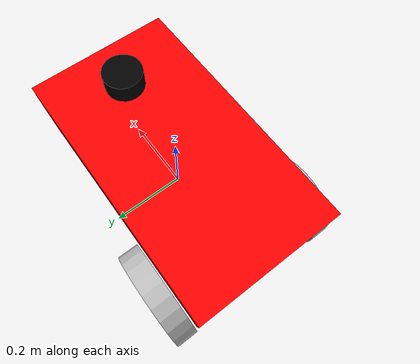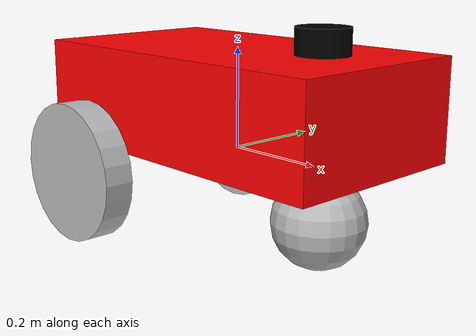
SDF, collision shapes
<?xml version="1.0" ?>
<sdf version="1.5">
  <model name="two_wheeled_robot">
  <static>false</static>

  <!-- ****************** ROBOT BASE FOOTPRINT ***************************  -->
  <pose>0.0 0.0 0.0 0.0 0.0 0.0</pose>
  <link name="base_footprint"/>

  <!-- ********************** ROBOT BASE *********************************  -->
  <link name="base_link">

    <collision name="base_collision">
      <pose>0 0 0.1 0 0 0</pose>
      <geometry>
        <box>
          <size>0.70 0.39 0.20</size>
        </box>
      </geometry>
    </collision>

    <visual name="base_visual">
      <pose>0 0 -0.05 1.5707963267949 0 3.141592654</pose>
      <geometry>
        <mesh>
          <uri>model://two_wheeled_robot_description/meshes/robot_base.stl</uri>
          <scale>1.0 1.0 1.0</scale>
        </mesh>
      </geometry>
      <material>
        <ambient>1.0 0.0 0.0 1.0</ambient>
        <diffuse>1.0 0.0 0.0 1.0</diffuse>
        <specular>0.0 0.0 0.0 1.0</specular>
        <emissive>0.0 0.0 0.0 1.0</emissive>
      </material>
    </visual>
  </link>

  <!-- *********************** IMU SENSOR SETUP **************************  -->
  <link name="imu_link">
    <gravity>true</gravity>
    <sensor name="twr_imu" type="imu">
      <always_on>true</always_on>
      <update_rate>100</update_rate>
      <visualize>true</visualize>
      <imu>
        <orientation>
          <x>
            <noise type="gaussian">
              <mean>0.0</mean>
              <stddev>2e-3</stddev>
            </noise>
          </x>
          <y>
            <noise type="gaussian">
              <mean>0.0</mean>
              <stddev>2e-3</stddev>
            </noise>
          </y>
          <z>
            <noise type="gaussian">
              <mean>0.0</mean>
              <stddev>2e-3</stddev>
            </noise>
          </z>
        </orientation>
        <angular_velocity>
          <x>
            <noise type="gaussian">
              <mean>0.0</mean>
              <stddev>2e-4</stddev>
            </noise>
          </x>
          <y>
            <noise type="gaussian">
              <mean>0.0</mean>
              <stddev>2e-4</stddev>
            </noise>
          </y>
          <z>
            <noise type="gaussian">
              <mean>0.0</mean>
              <stddev>2e-4</stddev>
            </noise>
          </z>
        </angular_velocity>
        <linear_acceleration>
          <x>
            <noise type="gaussian">
              <mean>0.0</mean>
              <stddev>1.7e-2</stddev>
            </noise>
          </x>
          <y>
            <noise type="gaussian">
              <mean>0.0</mean>
              <stddev>1.7e-2</stddev>
            </noise>
          </y>
          <z>
            <noise type="gaussian">
              <mean>0.0</mean>
              <stddev>1.7e-2</stddev>
            </noise>
          </z>
        </linear_acceleration>
      </imu>
      <plugin name="two_wheeled_robot_imu" filename="libgazebo_ros_imu_sensor.so">
        <initial_orientation_as_reference>false</initial_orientation_as_reference>
        <frame_name>imu_link</frame_name>
        <ros>
          <namespace>/imu</namespace>
          <remapping>~/out:=data</remapping>
        </ros>
      </plugin>
    </sensor>
  </link>

  <!-- ****************************** LIDAR *****************************    -->
  <link name="lidar_link">
    <inertial>
      <pose>0.215 0 0.13 0 0 0</pose>
      <inertia>
        <ixx>0.001</ixx>
        <ixy>0.000</ixy>
        <ixz>0.000</ixz>
        <iyy>0.001</iyy>
        <iyz>0.000</iyz>
        <izz>0.001</izz>
      </inertia>
      <mass>0.114</mass>
    </inertial>

    <collision name="lidar_collision">
      <pose>0.215 0 0.13 0 0 0</pose>
      <geometry>
        <cylinder>
          <radius>0.0508</radius>
          <length>0.1</length>
        </cylinder>
      </geometry>
    </collision>

    <visual name="lidar_visual">
      <pose>0.215 0 0.13 0 0 0</pose>
      <geometry>
        <cylinder>
          <radius>0.0508</radius>
          <length>0.1</length>
        </cylinder>
      </geometry>
      <material>
        <ambient>0.0 0.0 0.0 1.0</ambient>
        <diffuse>0.0 0.0 0.0 1.0</diffuse>
        <specular>0.0 0.0 0.0 1.0</specular>
        <emissive>0.0 0.0 0.0 1.0</emissive>
      </material>
    </visual>

    <sensor name="lidar" type="ray">
      <pose>0.215 0 0.1 0 0 0</pose>
      <always_on>true</always_on>
      <visualize>true</visualize>
      <update_rate>5</update_rate>
      <ray>
        <scan>
          <horizontal>
            <samples>120</samples>
            <resolution>1.000000</resolution>
            <min_angle>-3.14159</min_angle>
            <max_angle>3.14159</max_angle>
          </horizontal>
        </scan>
        <range>
          <min>0.3</min>
          <max>15.0</max>
          <resolution>0.015</resolution>
        </range>
        <noise>
          <type>gaussian</type>
          <mean>0.0</mean>
          <stddev>0.01</stddev>
        </noise>
      </ray>
      <plugin name="scan" filename="libgazebo_ros_ray_sensor.so">
        <ros>
          <remapping>~/out:=scan</remapping>
        </ros>
        <output_type>sensor_msgs/LaserScan</output_type>
        <frame_name>lidar_link</frame_name>
      </plugin>
    </sensor>
  </link>

  <!-- ****************************** camera *****************************    -->
  <link name="camera_link">
    <inertial>
      <pose>0.215 0 0.23 0 0 0</pose>
      <inertia>
        <ixx>0.001</ixx>
        <ixy>0.000</ixy>
        <ixz>0.000</ixz>
        <iyy>0.001</iyy>
        <iyz>0.000</iyz>
        <izz>0.001</izz>
      </inertia>
      <mass>0.114</mass>
    </inertial>

    <collision name="camera_collision">
      <pose>0.215 0 0.23 0 0 0</pose>
      <geometry>
        <cylinder>
          <radius>0.0508</radius>
          <length>0.05</length>
        </cylinder>
      </geometry>
    </collision>

    <visual name="camera_visual">
      <pose>0.215 0 0.23 0 0 0</pose>
      <geometry>
        <cylinder>
          <radius>0.0508</radius>
          <length>0.05</length>
        </cylinder>
      </geometry>
      <material>
        <ambient>0.0 0.0 0.0 1.0</ambient>
        <diffuse>0.0 0.0 0.0 1.0</diffuse>
        <specular>0.0 0.0 0.0 1.0</specular>
        <emissive>0.0 0.0 0.0 1.0</emissive>
      </material>
    </visual>

    <sensor name="camera" type="camera">
      <pose>0.215 0 0.2325 0 0 0</pose>
      <always_on>true</always_on>
      <visualize>true</visualize>
      <update_rate>30</update_rate>
      <camera>
        <horizontal_fov>1.3962634</horizontal_fov>
        <image>
          <width>800</width>
          <height>600</height>
          <format>R8G8B8</format>
        </image>
        <clip>
          <near>0.1</near>
          <far>100.0</far>
        </clip>
      </camera>

      <plugin name="camera_controller" filename="libgazebo_ros_camera.so">
        <ros>
          <remapping>~/out:=camera/image_raw</remapping>
        </ros>
        <output_type>sensor_msgs/Image</output_type>
        <frame_name>camera_link</frame_name>
      </plugin>
    </sensor>

    <plugin name="camera_joint_position_controller" filename="libgazebo_ros_joint_position_controller.so">
      <joint_name>camera_joint</joint_name>
      <command_topic>camera_joint_position</command_topic>
    </plugin>

  </link>

  <!-- *********************** DRIVE WHEELS ******************************  -->
  <link name="drivewhl_l_link">
    <pose>-0.221 0.23 -0.05 0 1.570796 1.570796</pose>

    <collision name="drivewhl_l_collision">
      <geometry>
        <cylinder>
          <radius>0.14</radius>
          <length>0.06</length>
        </cylinder>
      </geometry>
    </collision>

    <visual name="drivewhl_l_visual">
      <geometry>
        <cylinder>
          <radius>0.14</radius>
          <length>0.06</length>
        </cylinder>
      </geometry>
    </visual>
  </link>

  <link name="drivewhl_r_link">
    <pose>-0.221 -0.23 -0.05 0 1.570796 1.570796</pose>

    <collision name="drivewhl_r_collision">
      <geometry>
        <cylinder>
          <radius>0.14</radius>
          <length>0.06</length>
        </cylinder>
      </geometry>
    </collision>

    <visual name="drivewhl_r_visual">
      <geometry>
        <cylinder>
          <radius>0.14</radius>
          <length>0.06</length>
        </cylinder>
      </geometry>
    </visual>
  </link>

  <!-- *********************** CASTER WHEEL ******************************  -->
  <link name='front_caster'>
    <pose>0.217 0 -0.1 0 0 0</pose>
    <inertial>
      <inertia>
        <ixx>0.001</ixx>
        <ixy>0.000</ixy>
        <ixz>0.000</ixz>
        <iyy>0.001</iyy>
        <iyz>0.000</iyz>
        <izz>0.001</izz>
      </inertia>
      <mass>70.0</mass>
    </inertial>
    <collision name='collision'>
      <geometry>
        <sphere>
          <radius>0.09</radius>
        </sphere>
      </geometry>
      <surface>
        <friction>
          <ode>
            <mu>0.01</mu>
            <mu2>0.01</mu2>
            <slip1>1.0</slip1>
            <slip2>1.0</slip2>
          </ode>
        </friction>
      </surface>
    </collision>
    <visual name="front_caster_visual">
      <geometry>
        <sphere>
          <radius>0.09</radius>
        </sphere>
      </geometry>
    </visual>
  </link>

  <!-- ************************ JOINTS ***********************************  -->
  <!-- Pose of the joint is the same as the child link frame -->
  <!-- Axis is the axis of rotation relative to the child link frame -->

  <joint name="base_joint" type="fixed">
    <parent>base_footprint</parent>
    <child>base_link</child>
    <pose>0 0 0 0 0 0</pose>
  </joint>

  <joint name="drivewhl_l_joint" type="revolute">
    <parent>base_link</parent>
    <child>drivewhl_l_link</child>
    <pose>0 0 0 0 0 0</pose>
    <axis>
      <xyz>0 0 1</xyz>
    </axis>
  </joint>

  <joint name="drivewhl_r_joint" type="revolute">
    <parent>base_link</parent>
    <child>drivewhl_r_link</child>
    <pose>0 0 0 0 0 0</pose>
    <axis>
      <xyz>0 0 1</xyz>
    </axis>
  </joint>

  <joint name='caster_joint' type='fixed'>
    <parent>base_link</parent>
    <child>front_caster</child>
    <pose>0 0 0 0 0 0</pose>
  </joint>

  <joint name="imu_joint" type="fixed">
    <parent>base_link</parent>
    <child>imu_link</child>
    <pose>0 0 0 0 0 0</pose>
  </joint>

  <joint name="camera_joint" type="continuous">
    <parent>lidar_link</parent>
    <child>camera_link</child>
    <pose>0 0 0 0 0 0</pose>
  </joint>

  <joint name="gps_joint" type="fixed">
    <parent>base_link</parent>
    <child>gps_link</child>
    <pose>0 0 0 0 0 0</pose>
  </joint>

  <joint name="lidar_joint" type="fixed">
    <parent>base_link</parent>
    <child>lidar_link</child>
    <pose>0 0 0 0 0 0</pose>
  </joint>

 <!-- *********************** WHEEL ODOMETRY ***************************    -->
  <plugin name="two_wheeled_robot_diff_drive" filename="libgazebo_ros_diff_drive.so">

    <update_rate>30</update_rate>

    <!-- wheels -->
    <left_joint>drivewhl_l_joint</left_joint>
    <right_joint>drivewhl_r_joint</right_joint>

    <!-- kinematics -->
    <wheel_separation>0.52</wheel_separation>
    <wheel_diameter>0.28</wheel_diameter>

    <!-- limits -->
    <max_wheel_torque>20</max_wheel_torque>
    <max_wheel_acceleration>1.0</max_wheel_acceleration>

    <!-- Receive velocity commands on this ROS topic -->
    <command_topic>cmd_vel</command_topic>

    <!-- output -->
    <!-- When false, publish no wheel odometry data to a ROS topic -->
    <publish_odom>true</publish_odom>

    <!-- When true, publish coordinate transform from odom to base_footprint -->
    <!-- I usually use the robot_localization package to publish this transform -->
    <publish_odom_tf>false</publish_odom_tf>

    <!-- When true, publish coordinate transform from base_link to the wheels -->
    <!-- The robot_state_publisher package is often used to publish this transform -->
    <publish_wheel_tf>false</publish_wheel_tf>

    <odometry_topic>odom</odometry_topic>
    <odometry_frame>odom</odometry_frame>
    <robot_base_frame>base_footprint</robot_base_frame>

    <!-- Odometry source, 0 for ENCODER, 1 for WORLD, defaults to WORLD -->
    <odometry_source>1</odometry_source>

    <!-- Change the ROS topic we will publish the odometry data to -->
    <ros>
      <remapping>odom:=wheel/odometry</remapping>
    </ros>

  </plugin>

 <!-- *********************** JOINT STATE PUBLISHER *********************   -->

  <plugin name="two_wheeled_robot_joint_state" filename="libgazebo_ros_joint_state_publisher.so">
    <ros>
      <remapping>~/out:=joint_states</remapping>
    </ros>
    <update_rate>30</update_rate>
    <joint_name>drivewhl_l_joint</joint_name>
    <joint_name>drivewhl_r_joint</joint_name>
  </plugin>

  </model>
</sdf>
